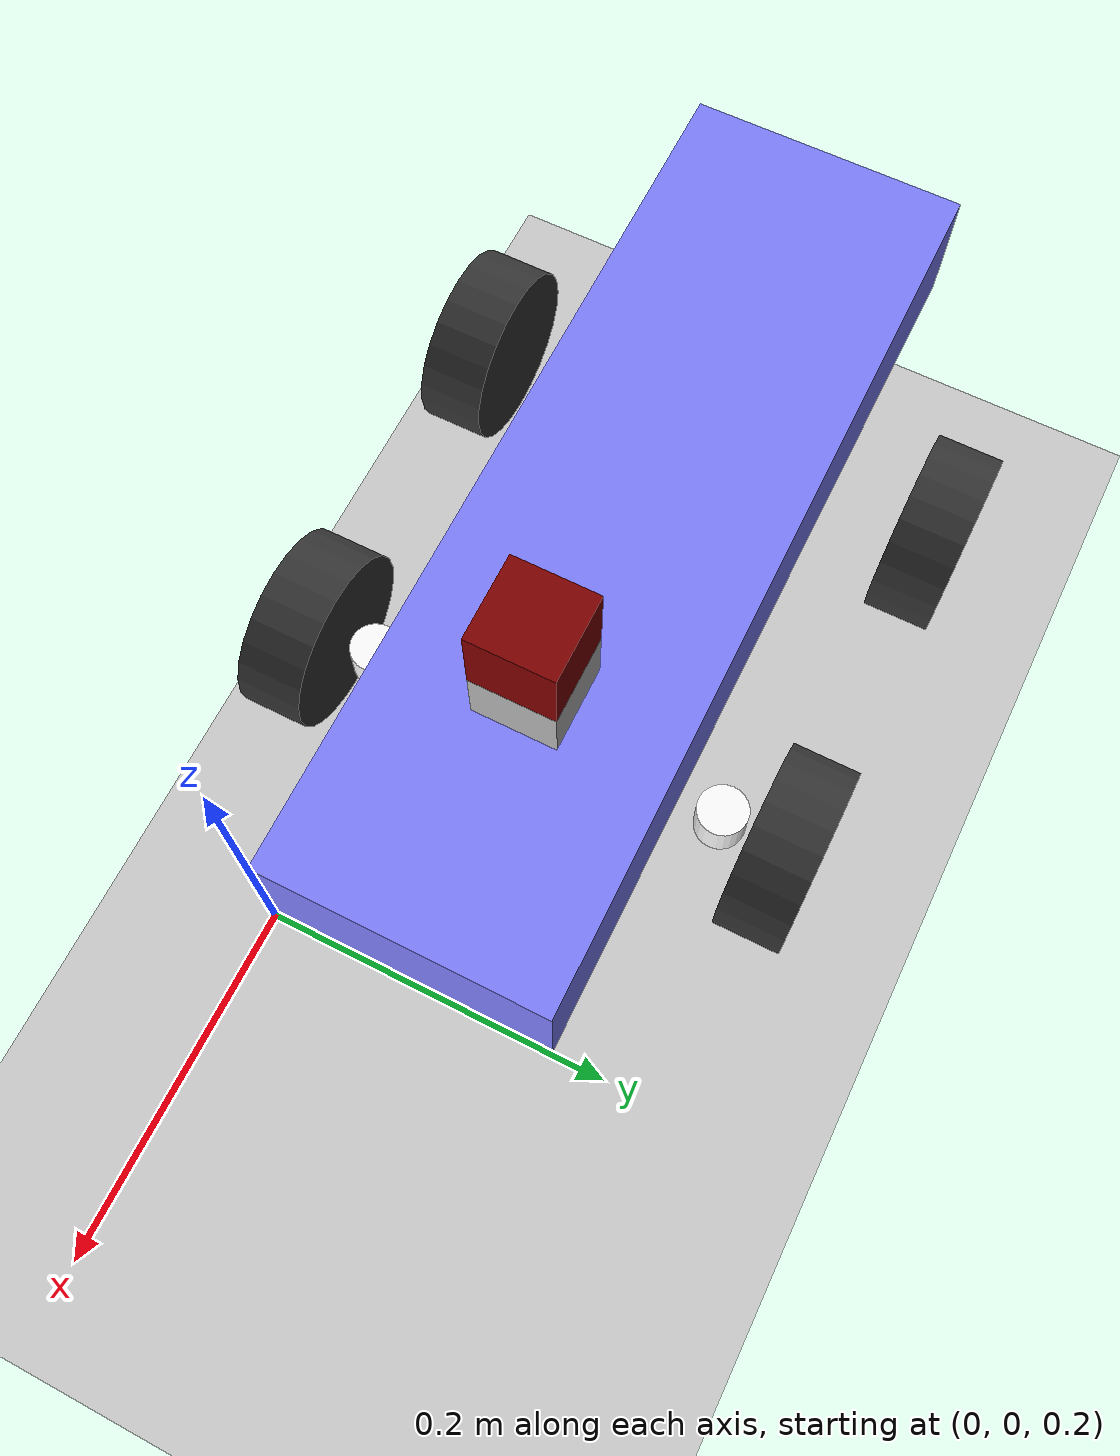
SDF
<?xml version="1.0" ?>
<sdf version="1.9">
    <world name="car_world">
        <plugin filename="ignition-gazebo-physics-system"
            name="ignition::gazebo::systems::Physics">
    </plugin>
    <plugin filename="ignition-gazebo-scene-broadcaster-system"
        name="ignition::gazebo::systems::SceneBroadcaster">
</plugin>
<plugin filename="libignition-gazebo-imu-system.so"
    name="ignition::gazebo::systems::Imu">
        </plugin>
        <plugin filename="libignition-gazebo-contact-system.so"
            name="ignition::gazebo::systems::Contact">
    </plugin>
    <plugin filename="libignition-gazebo-sensors-system.so"
        name="ignition::gazebo::systems::Sensors">
    <render_engine>ogre2</render_engine>
</plugin>
<plugin
      filename="ignition-gazebo-user-commands-system"
      name="gz::sim::systems::UserCommands">
    </plugin>

<gui fullscreen="0">

    <!-- 3D scene -->
    <plugin filename="MinimalScene" name="3D View">
        <ignition-gui>
            <title>3D View</title>
            <property type="bool" key="showTitleBar">false</property>
            <property type="string" key="state">docked</property>
        </ignition-gui>

        <engine>ogre2</engine>
        <scene>scene</scene>
        <ambient_light>0.4 0.4 0.4</ambient_light>
        <background_color>0.8 0.8 0.8</background_color>
        <camera_pose>-6 0 6 0 0.5 0</camera_pose>
    </plugin>
    <!-- Plugins that add functionality to the scene -->
    <plugin filename="EntityContextMenuPlugin" name="Entity context menu">
        <ignition-gui>
            <property key="state" type="string">floating</property>
            <property key="width" type="double">5</property>
            <property key="height" type="double">5</property>
            <property key="showTitleBar" type="bool">false</property>
        </ignition-gui>
    </plugin>
    <plugin filename="GzSceneManager" name="Scene Manager">
        <ignition-gui>
            <property key="resizable" type="bool">false</property>
            <property key="width" type="double">5</property>
            <property key="height" type="double">5</property>
            <property key="state" type="string">floating</property>
            <property key="showTitleBar" type="bool">false</property>
        </ignition-gui>
    </plugin>
    <plugin filename="InteractiveViewControl" name="Interactive view control">
        <ignition-gui>
            <property key="resizable" type="bool">false</property>
            <property key="width" type="double">5</property>
            <property key="height" type="double">5</property>
            <property key="state" type="string">floating</property>
            <property key="showTitleBar" type="bool">false</property>
        </ignition-gui>
    </plugin>
    <plugin filename="CameraTracking" name="Camera Tracking">
        <ignition-gui>
            <property key="resizable" type="bool">false</property>
            <property key="width" type="double">5</property>
            <property key="height" type="double">5</property>
            <property key="state" type="string">floating</property>
            <property key="showTitleBar" type="bool">false</property>
        </ignition-gui>
    </plugin>
    <!-- World control -->
    <plugin filename="WorldControl" name="World control">
        <ignition-gui>
            <title>World control</title>
            <property type="bool" key="showTitleBar">false</property>
            <property type="bool" key="resizable">false</property>
            <property type="double" key="height">72</property>
            <property type="double" key="width">121</property>
            <property type="double" key="z">1</property>

            <property type="string" key="state">floating</property>
            <anchors target="3D View">
                <line own="left" target="left"/>
                <line own="bottom" target="bottom"/>
            </anchors>
        </ignition-gui>

        <play_pause>true</play_pause>
        <step>true</step>
        <start_paused>true</start_paused>
        <use_event>true</use_event>

    </plugin>

    <!-- World statistics -->
    <plugin filename="WorldStats" name="World stats">
        <ignition-gui>
            <title>World stats</title>
            <property type="bool" key="showTitleBar">false</property>
            <property type="bool" key="resizable">false</property>
            <property type="double" key="height">110</property>
            <property type="double" key="width">290</property>
            <property type="double" key="z">1</property>

            <property type="string" key="state">floating</property>
            <anchors target="3D View">
                <line own="right" target="right"/>
                <line own="bottom" target="bottom"/>
            </anchors>
        </ignition-gui>

        <sim_time>true</sim_time>
        <real_time>true</real_time>
        <real_time_factor>true</real_time_factor>
        <iterations>true</iterations>
    </plugin>

    <plugin filename="ImageDisplay" name="Image Display">
        <ignition-gui>
            <property key="state" type="string">docked</property>
        </ignition-gui>
    </plugin>
    <plugin filename="VisualizeLidar" name="Visualize Lidar">
        <ignition-gui>
            <property key="state" type="string">docked</property>
        </ignition-gui>
    </plugin>

    <!-- Entity tree -->
    <plugin filename="EntityTree" name="Entity tree">
        <ignition-gui>
            <property type="string" key="state">docked</property>
        </ignition-gui>
    </plugin>
</gui>

        <physics name="10ms" type="ignored">
            <max_step_size>0.05</max_step_size>
            <real_time_factor>2.0</real_time_factor>
        </physics>

        <light type="directional" name="sun">
            <cast_shadows>false</cast_shadows>
            <pose>0 0 10 0 0 0</pose>
            <diffuse>0.8 0.8 0.8 1</diffuse>
            <specular>0.2 0.2 0.2 1</specular>
            <attenuation>
                <range>1000</range>
                <constant>0.9</constant>
                <linear>0.01</linear>
                <quadratic>0.001</quadratic>
            </attenuation>
            <direction>-0.5 0.1 -0.9</direction>
        </light>
            <include>
                <name>f110_car</name>
                <uri>model://car/f110_car.sdf</uri>
                <pose>0 0 0.2 0 0 0</pose>
            </include>

            <model name="ground_plane">
                <static>true</static>
                <link name="link">
                    <collision name="collision">
                        <geometry>
                            <plane>
                                <normal>0 0 1</normal>
                            </plane>
                </geometry>
                </collision>
                <visual name="visual">
                <geometry>
                    <plane>
                    <normal>0 0 1</normal>
                    <size>100 100</size>
                    </plane>
                </geometry>
                <material>
                    <ambient>0.8 0.8 0.8 1</ambient>
                    <diffuse>0.8 0.8 0.8 1</diffuse>
                    <specular>0.8 0.8 0.8 1</specular>
                </material>
                </visual>
            </link>
        </model>
    </world>
</sdf>

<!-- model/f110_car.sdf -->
<sdf version="1.9">
    <model name="f110_car" canonical_link="base_link">

        <link name='base_link'>
            <gz_frame_id>base_link</gz_frame_id>
            <pose>-0.27 0.085 0.05 0 0 0</pose>
            <visual name='visual'>
                <geometry>
                    <box>
                        <size>0.54 0.17 0.08</size>
                    </box>
                </geometry>
                <material>
                    <ambient>0.5 0.5 1.0 1</ambient>
                    <diffuse>0.5 0.5 1.0 1</diffuse>
                    <specular>0.0 0.0 1.0 1</specular>
                </material>
            </visual>
            <collision name='collision'>
                <geometry>
                    <box>
                        <size>0.54 0.17 0.08</size>
                    </box>
                </geometry>
            </collision>
            <sensor name="imu_sensor" type="imu">
                <always_on>1</always_on>
                <update_rate>1</update_rate>
                <visualize>true</visualize>
                <topic>imu</topic>
            </sensor>
        </link>

        <link name='front_left_wheel'>
            <gz_frame_id>front_left_wheel</gz_frame_id>
            <pose relative_to="base_link">0.11 0.15 -0.05 -1.5707 0 0</pose>
            <inertial>
                <mass>2</mass>
                <inertia>
                    <ixx>0.145833</ixx>
                    <ixy>0</ixy>
                    <ixz>0</ixz>
                    <iyy>0.145833</iyy>
                    <iyz>0</iyz>
                    <izz>0.125</izz>
                </inertia>
            </inertial>
            <visual name='visual'>
                <geometry>
                    <cylinder>
                        <length>0.04</length>
                        <radius>0.055</radius>
                    </cylinder>
                </geometry>
                <material>
                    <ambient>0.2 0.2 0.2 1</ambient>
                    <diffuse>0.2 0.2 0.2 1</diffuse>
                    <specular>0.2 0.2 0.2 1</specular>
                </material>
            </visual>
            <collision name='collision'>
                <geometry>
                    <cylinder>
                        <length>0.04</length>
                        <radius>0.055</radius>
                    </cylinder>
                </geometry>
                <surface>
                    <friction>
                        <ode>
                            <mu>0.5</mu>
                            <mu2>1.0</mu2>
                            <fdir1>0 0 1</fdir1>
                        </ode>
                        <bullet>
                            <friction>0.5</friction>
                            <friction2>1</friction2>
                            <rolling_friction>0.1</rolling_friction>
                        </bullet>
                    </friction>
                </surface>
            </collision>
        </link>

        <link name='rear_left_wheel'>
            <pose relative_to="base_link">-0.11 0.15 -0.05 -1.5707 0 0</pose>
            <inertial>
                <mass>2</mass>
                <inertia>
                    <ixx>0.145833</ixx>
                    <ixy>0</ixy>
                    <ixz>0</ixz>
                    <iyy>0.145833</iyy>
                    <iyz>0</iyz>
                    <izz>0.125</izz>
                </inertia>
            </inertial>
            <visual name='visual'>
                <geometry>
                    <cylinder>
                        <length>0.04</length>
                        <radius>0.055</radius>
                    </cylinder>
                </geometry>
                <material>
                    <ambient>0.2 0.2 0.2 1</ambient>
                    <diffuse>0.2 0.2 0.2 1</diffuse>
                    <specular>0.2 0.2 0.2 1</specular>
                </material>
            </visual>
            <collision name='collision'>
                <geometry>
                    <cylinder>
                        <length>0.04</length>
                        <radius>0.055</radius>
                    </cylinder>
                </geometry>
                <surface>
                    <friction>
                        <ode>
                            <mu>0.5</mu>
                            <mu2>1.0</mu2>
                            <fdir1>0 0 1</fdir1>
                        </ode>
                        <bullet>
                            <friction>0.5</friction>
                            <friction2>1</friction2>
                            <rolling_friction>0.5</rolling_friction>
                        </bullet>
                    </friction>
                </surface>
            </collision>
        </link>

        <link name='front_right_wheel'>
            <pose relative_to="base_link">0.11 -0.15 -0.05 -1.5707 0 0</pose>
            <inertial>
                <mass>2</mass>
                <inertia>
                    <ixx>0.145833</ixx>
                    <ixy>0</ixy>
                    <ixz>0</ixz>
                    <iyy>0.145833</iyy>
                    <iyz>0</iyz>
                    <izz>0.125</izz>
                </inertia>
            </inertial>
            <visual name='visual'>
                <geometry>
                    <cylinder>
                        <length>0.04</length>
                        <radius>0.055</radius>
                    </cylinder>
                </geometry>
                <material>
                    <ambient>0.2 0.2 0.2 1</ambient>
                    <diffuse>0.2 0.2 0.2 1</diffuse>
                    <specular>0.2 0.2 0.2 1</specular>
                </material>
            </visual>
            <collision name='collision'>
                <geometry>
                    <cylinder>
                        <length>0.04</length>
                        <radius>0.055</radius>
                    </cylinder>
                </geometry>
                <surface>
                    <friction>
                        <ode>
                            <mu>0.5</mu>
                            <mu2>1.0</mu2>
                            <fdir1>0 0 1</fdir1>
                        </ode>
                        <bullet>
                            <friction>0.5</friction>
                            <friction2>1</friction2>
                            <rolling_friction>0.1</rolling_friction>
                        </bullet>
                    </friction>
                </surface>
            </collision>
        </link>

        <link name='rear_right_wheel'>
            <pose relative_to="base_link">-0.11 -0.15 -0.05 -1.5707 0 0</pose>
            <inertial>
                <mass>2</mass>
                <inertia>
                    <ixx>0.145833</ixx>
                    <ixy>0</ixy>
                    <ixz>0</ixz>
                    <iyy>0.145833</iyy>
                    <iyz>0</iyz>
                    <izz>0.125</izz>
                </inertia>
            </inertial>
            <visual name='visual'>
                <geometry>
                    <cylinder>
                        <length>0.04</length>
                        <radius>0.055</radius>
                    </cylinder>
                </geometry>
                <material>
                    <ambient>0.2 0.2 0.2 1</ambient>
                    <diffuse>0.2 0.2 0.2 1</diffuse>
                    <specular>0.2 0.2 0.2 1</specular>
                </material>
            </visual>
            <collision name='collision'>
                <geometry>
                    <cylinder>
                        <length>0.04</length>
                        <radius>0.055</radius>
                    </cylinder>
                </geometry>
                <surface>
                    <friction>
                        <ode>
                            <mu>0.5</mu>
                            <mu2>1.0</mu2>
                            <fdir1>0 0 1</fdir1>
                        </ode>
                        <bullet>
                            <friction>0.5</friction>
                            <friction2>1</friction2>
                            <rolling_friction>0.5</rolling_friction>
                        </bullet>
                    </friction>
                </surface>
            </collision>
        </link>

        <link name="front_left_wheel_steering_link">
            <pose relative_to="front_left_wheel">-0 0 -0.04 1.570 0 0</pose>
            <inertial>
                <mass>0.5</mass>
                <inertia>
                    <ixx>0.0153</ixx>
                    <iyy>0.025</iyy>
                    <izz>0.0153</izz>
                </inertia>
            </inertial>
            <visual name="steering_link_visual">
                <pose>0 0 0 0 0 0</pose>
                <geometry>
                    <cylinder>
                        <length>0.025</length>
                        <radius>0.015</radius>
                    </cylinder>
                </geometry>
                <material>
                    <ambient>1 1 1</ambient>
                    <diffuse>1 1 1</diffuse>
                </material>
            </visual>
        </link>

        <link name="front_right_wheel_steering_link">
            <pose relative_to="front_right_wheel">-0 0 0.04 1.570 0 0</pose>
            <inertial>
                <mass>0.5</mass>
                <inertia>
                    <ixx>0.0153</ixx>
                    <iyy>0.025</iyy>
                    <izz>0.0153</izz>
                </inertia>
            </inertial>
            <visual name="steering_link_visual">
                <pose>0 0 0 0 0 0</pose>
                <geometry>
                    <cylinder>
                        <length>0.025</length>
                        <radius>0.015</radius>
                    </cylinder>
                </geometry>
                <material>
                    <ambient>1 1 1</ambient>
                    <diffuse>1 1 1</diffuse>
                </material>
            </visual>
        </link>

        <joint name="front_left_wheel_steering_joint" type="revolute">
            <child>front_left_wheel_steering_link</child>
            <parent>base_link</parent>
            <axis>
                <xyz>0 0 1</xyz>
                <limit>
                    <lower>-0.6</lower>
                    <upper>+0.6</upper>
                    <velocity>1.0</velocity>
                    <effort>25</effort>
                </limit>
                <use_parent_model_frame>1</use_parent_model_frame>
            </axis>
        </joint>

        <joint name="front_right_wheel_steering_joint" type="revolute">
            <parent>base_link</parent>
            <child>front_right_wheel_steering_link</child>
            <axis>
                <xyz>0 0 1</xyz>
                <limit>
                    <lower>-0.6</lower>
                    <upper>+0.6</upper>
                    <velocity>1.0</velocity>
                    <effort>25</effort>
                </limit>
            </axis>
        </joint>

        <joint name='front_left_wheel_joint' type='revolute'>
            <parent>front_left_wheel_steering_link</parent>
            <child>front_left_wheel</child>
            <axis>
                <xyz>0 0 1</xyz>
                <limit>
                    <lower>-1.79769e+308</lower>
                    <upper>1.79769e+308</upper>
                </limit>
            </axis>
        </joint>

        <joint name='front_right_wheel_joint' type='revolute'>
            <parent>front_right_wheel_steering_link</parent>
            <child>front_right_wheel</child>
            <axis>
                <xyz>0 0 1</xyz>
                <limit>
                    <lower>-1.79769e+308</lower>
                    <upper>1.79769e+308</upper>
                </limit>
            </axis>
        </joint>

        <joint name='rear_left_wheel_joint' type='revolute'>
            <parent>base_link</parent>
            <child>rear_left_wheel</child>
            <axis>
                <xyz>0 0 1</xyz>
                <limit>
                    <lower>-1.79769e+308</lower>
                    <upper>1.79769e+308</upper>
                </limit>
            </axis>
        </joint>

        <joint name='rear_right_wheel_joint' type='revolute'>
            <parent>base_link</parent>
            <child>rear_right_wheel</child>
            <axis>
                <xyz>0 0 1</xyz>
                <limit>
                    <lower>-1.79769e+308</lower>
                    <upper>1.79769e+308</upper>
                </limit>
            </axis>
        </joint>
        <!-- SENSORS -->
        <link name="camera_link">
            <pose relative_to="lidar_link">0 0 0.05 0 0 0</pose>
            <inertial>
                <mass>0.1</mass>
                <inertia>
                    <ixx>0.000166667</ixx>
                    <iyy>0.000166667</iyy>
                    <izz>0.000166667</izz>
                </inertia>
            </inertial>
            <collision name="collision">
                <geometry>
                    <box>
                        <size>0.05 0.05 0.05</size>
                    </box>
                </geometry>
            </collision>
            <visual name="visual">
                <material>
                    <ambient>0.5 0 0 1</ambient>
                    <diffuse>0.5 0 0 1</diffuse>
                </material>
                <geometry>
                    <box>
                        <size>0.05 0.05 0.05</size>
                    </box>
                </geometry>
            </visual>

            <sensor name="camera" type="camera">
                <camera>
                    <horizontal_fov>1.204277</horizontal_fov>
                    <vertical_fov>0.7330383</vertical_fov>
                    <image>
                        <width>1280</width>
                        <height>720</height>
                    </image>
                    <clip>
                        <near>0.1</near>
                        <far>100</far>
                    </clip>
                </camera>
                <always_on>1</always_on>
                <update_rate>5</update_rate>
                <visualize>true</visualize>
                <topic>camera</topic>
            </sensor>
        <sensor name="depth_camera1" type="depth_camera">
          <update_rate>5</update_rate>
          <topic>depth_camera</topic>
              <camera>
                <horizontal_fov>1.518436</horizontal_fov>
                <vertical_fov>1.012291</vertical_fov>
                <image>
                  <width>1280</width>
                  <height>720</height>
                  <format>R_FLOAT32</format>
                </image>
                <clip>
                  <near>0.28</near>
                  <far>10.0</far>
                </clip>
              </camera>
          </sensor>
        </link>

        <link name="lidar_link">
            <pose relative_to="base_link">0.12 0 0.055 0 0 0</pose>
            <inertial>
                <mass>0.1</mass>
                <inertia>
                    <ixx>0.000166667</ixx>
                    <iyy>0.000166667</iyy>
                    <izz>0.000166667</izz>
                </inertia>
            </inertial>
            <collision name="collision">
                <geometry>
                    <box>
                        <size>0.05 0.05 0.05</size>
                    </box>
                </geometry>
            </collision>
            <visual name="visual">
                <geometry>
                    <box>
                        <size>0.05 0.05 0.05</size>
                    </box>
                </geometry>
            </visual>
            <sensor name='gpu_lidar' type='gpu_lidar'>"
            <topic>scan</topic>
            <update_rate>30</update_rate>
            <lidar>
                <scan>
                    <horizontal>
                        <samples>1081</samples>
                        <resolution>1</resolution>
                        <min_angle>-2.356194</min_angle>
                        <max_angle>2.356194</max_angle>
                    </horizontal>
                    <vertical>
                        <samples>1</samples>
                        <resolution>0.01</resolution>
                        <min_angle>0</min_angle>
                        <max_angle>0</max_angle>
                    </vertical>
                </scan>
                <range>
                    <min>0.06</min>
                    <max>10.0</max>
                    <resolution>0.01</resolution>
                </range>
            </lidar>
            <always_on>1</always_on>
            <visualize>true</visualize>
            <gz_frame_id>lidar_link</gz_frame_id>
        </sensor>
    </link>

    <joint name="camera_joint" type="fixed">
        <parent>base_link</parent>
        <child>camera_link</child>
    </joint>
    <joint name="lidar_joint" type="fixed">
        <parent>base_link</parent>
        <child>lidar_link</child>
    </joint>

    <plugin
        filename="gz-sim-ackermann-steering-system"
        name="gz::sim::systems::AckermannSteering">
        <topic>cmd_vel</topic>
        <odom_topic>odom</odom_topic>
        <child_frame_id>base_link</child_frame_id>
        <left_joint>front_left_wheel_joint</left_joint>
        <left_joint>rear_left_wheel_joint</left_joint>
        <right_joint>front_right_wheel_joint</right_joint>
        <right_joint>rear_right_wheel_joint</right_joint>
        <left_steering_joint>front_left_wheel_steering_joint</left_steering_joint>
        <right_steering_joint>front_right_wheel_steering_joint</right_steering_joint>
        <kingpin_width>.2</kingpin_width>
        <steering_limit>0.5</steering_limit>
        <wheel_base>0.3</wheel_base>
        <wheel_separation>.22</wheel_separation>
        <wheel_radius>0.055</wheel_radius>
        <min_velocity>-0.5</min_velocity>
        <max_velocity>0.5</max_velocity>
        <min_acceleration>-0.25</min_acceleration>
        <max_acceleration>0.25</max_acceleration>
    </plugin>
</model>
</sdf>
